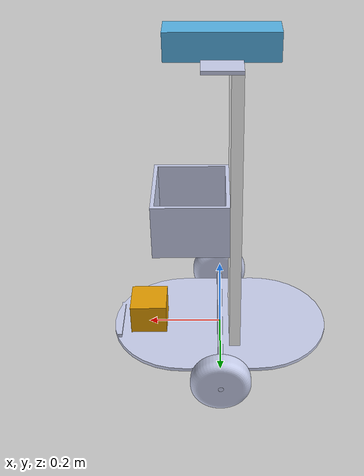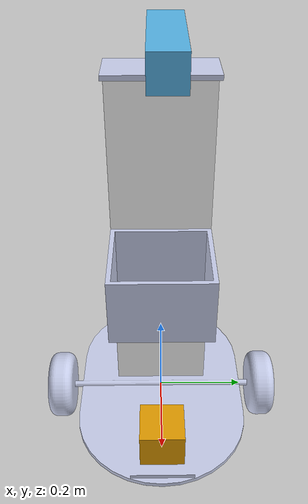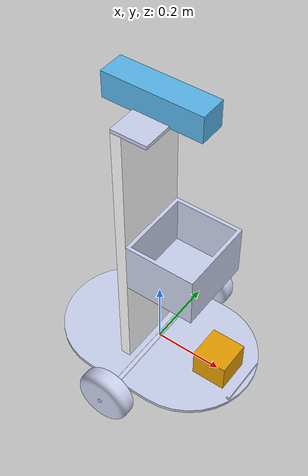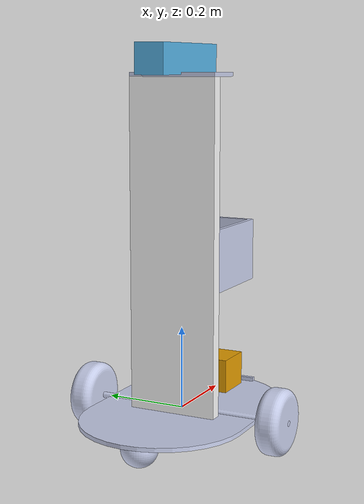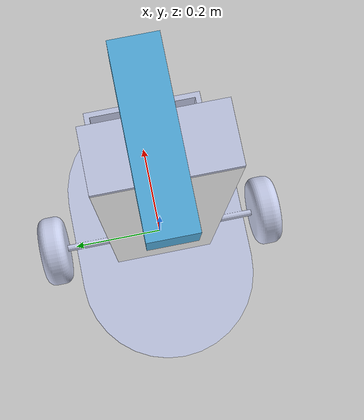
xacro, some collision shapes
<?xml version="1.0" ?>
<robot xmlns:xacro="http://www.ros.org/wiki/xacro"
 	     xmlns:sensor="http://playerstage.sourceforge.net/gazebo/xmlschema/#sensor"
    	 xmlns:controller="http://playerstage.sourceforge.net/gazebo/xmlschema/#controller"
    	 xmlns:interface="http://playerstage.sourceforge.net/gazebo/xmlschema/#interface"
  name="deliver_rb">

  <!-- LASER ATTACHMENT -->
  <xacro:include filename="$(find deliver_rb)/urdf/hokuyo.xacro"/>

  <xacro:hokuyo_sensor parent="base_link">
	</xacro:hokuyo_sensor>

  <!-- Import all Gazebo-customization elements, including Gazebo colors, sensors, controller -->
  <xacro:include filename="$(find deliver_rb)/urdf/plug_in.gazebo" />

  <xacro:property name="length_wheel" value="0.06" />
	<xacro:property name="radius_wheel" value="0.08" />
	<xacro:property name="mass_wheel" value="1.5" />
	<xacro:property name="distance_2wheels" value="0.5" />

	<xacro:property name="radius_base" value="0.6" />
	<xacro:property name="length_base" value="0.02" />
	<xacro:property name="mass_base" value="4" />

    <!-- KINECT ATTACHMENT -->
    <xacro:include filename="$(find deliver_rb)/urdf/kinect.xacro"/>
    <xacro:kinect_sensor parent_frame="hat">
    </xacro:kinect_sensor>

<!-- inertia for 3 popular shape -->
  <xacro:macro name="default_inertia" params="mass">
    <inertia>
      <mass value="${mass}" />
      <inertia
        ixx="1.0" ixy="0.0" ixz="0.0"
        iyy="1.0" iyz="0.0"
        izz="1.0" />
    </inertia>
	</xacro:macro>

	<xacro:macro name="cylinder_inertia" params="m r h">
		<inertia  ixx="${m*(3*r*r+h*h)/12}" ixy = "0" ixz = "0"
	    		iyy="${m*(3*r*r+h*h)/12}" iyz = "0"
	    		izz="${m*r*r/2}"
  		/>
	</xacro:macro>

	<xacro:macro name="sphere_inertia" params="m r">
		<inertia
			ixx="${2*m*r*r/5}" ixy = "0" ixz = "0"
		    	iyy="${2*m*r*r/5}" iyz = "0"
		    	izz="${2*m*r*r/5}"
		/>
	</xacro:macro>

<!-- inertia for 3 popular shape -->

  <link
    name="base_link">
    <inertial>
      <origin
        xyz="0.0018748 -2.8458E-17 -0.0047313"
        rpy="0 0 0" />
      <mass
        value="4" />
      <inertia
        ixx="0.025394"
        ixy="-4.7715E-19"
        ixz="-3.8944E-05"
        iyy="0.050269"
        iyz="-5.5879E-20"
        izz="0.075619" />
    </inertial>
    <visual>
      <origin
        xyz="0 0 0"
        rpy="0 0 0" />
      <geometry>
        <mesh
          filename="package://deliver_rb/meshes/base_link.STL" />
      </geometry>
      <material
        name="">
        <color
          rgba="0.79216 0.81961 0.93333 1" />
      </material>
    </visual>
    <collision>
      <origin
        xyz="0 0 0"
        rpy="0 0 0" />
      <geometry>
        <mesh
          filename="package://deliver_rb/meshes/base_link.STL" />
      </geometry>
    </collision>
  </link>
  <link
    name="right_wheel">
    <inertial>
      <origin
        xyz="3.8799E-19 0 2.1874E-18"
        rpy="0 0 0" />
      <mass
        value="1.1143" />
      <inertia
        ixx="0.0020008"
        ixy="-2.5123E-21"
        ixz="3.405E-20"
        iyy="0.0033919"
        iyz="3.0361E-21"
        izz="0.0020008" />
    </inertial>
    <visual>
      <origin
        xyz="0 0 0"
        rpy="0 0 0" />
      <geometry>
        <mesh
          filename="package://deliver_rb/meshes/right_wheel.STL" />
      </geometry>
      <material
        name="">
        <color
          rgba="0.79216 0.81961 0.93333 1" />
      </material>
    </visual>
    <collision>
      <origin
        xyz="0 0 0"
        rpy="0 0 0" />
      <geometry>
        <mesh
          filename="package://deliver_rb/meshes/right_wheel.STL" />
      </geometry>
    </collision>
  </link>
  <joint
    name="base_right_join"
    type="continuous">
    <origin
      xyz="0 -0.25 0"
      rpy="0 0 0" />
    <parent
      link="base_link" />
    <child
      link="right_wheel" />
    <axis
      xyz="0 1 0" />
  </joint>
  <link
    name="left_wheel">
    <inertial>
      <origin
        xyz="-1.31975619602331E-18 0 -8.88625198590593E-19"
        rpy="0 0 0" />
      <mass
        value="1.11429115383499" />
      <inertia
        ixx="0.00200083706988604"
        ixy="-1.65144393546253E-20"
        ixz="9.01511062397042E-20"
        iyy="0.00339186705795332"
        iyz="-7.15320021113774E-21"
        izz="0.00200083706988604" />
    </inertial>
    <visual>
      <origin
        xyz="0 0 0"
        rpy="0 0 0" />
      <geometry>
        <mesh
          filename="package://deliver_rb/meshes/left_wheel.STL" />
      </geometry>
      <material
        name="">
        <color
          rgba="0.792156862745098 0.819607843137255 0.933333333333333 1" />
      </material>
    </visual>
    <collision>
      <origin
        xyz="0 0 0"
        rpy="0 0 0" />
      <geometry>
        <mesh
          filename="package://deliver_rb/meshes/left_wheel.STL" />
      </geometry>
    </collision>
  </link>
  <joint
    name="base_left_wheel"
    type="continuous">
    <origin
      xyz="0 0.25 0"
      rpy="0 0 0" />
    <parent
      link="base_link" />
    <child
      link="left_wheel" />
    <axis
      xyz="0 1 0" />
  </joint>
  <link
    name="pole">
    <inertial>
      <origin
        xyz="0 0 0"
        rpy="0 0 0" />
      <mass
        value="0" />
      <inertia
        ixx="0"
        ixy="0"
        ixz="0"
        iyy="0"
        iyz="0"
        izz="0" />
    </inertial>
    <visual>
      <origin
        xyz="0 0 0"
        rpy="0 0 0" />
      <geometry>
        <mesh
          filename="package://deliver_rb/meshes/pole.STL" />
      </geometry>
      <material
        name="">
        <color
          rgba="1 1 1 1" />
      </material>
    </visual>
    <collision>
      <origin
        xyz="0 0 0"
        rpy="0 0 0" />
      <geometry>
        <mesh
          filename="package://deliver_rb/meshes/pole.STL" />
      </geometry>
    </collision>
  </link>
  <joint
    name="base_pole_join"
    type="fixed">
    <origin
      xyz="-0.0549999999999999 0 0"
      rpy="0 0 0" />
    <parent
      link="base_link" />
    <child
      link="pole" />
    <axis
      xyz="0 0 0" />
  </joint>
  <link
    name="free_forward">
    <inertial>
      <origin
        xyz="2.77555756156289E-17 -1.78473511245526E-18 -0.0265597216130682"
        rpy="0 0 0" />
      <mass
        value="0.367480429154608" />
      <inertia
        ixx="0.000308959164383823"
        ixy="-5.83955431755321E-21"
        ixz="1.16318882227363E-20"
        iyy="0.000308959164383823"
        iyz="9.97736898770812E-21"
        izz="0.000377486723963042" />
    </inertial>
    <visual>
      <origin
        xyz="0 0 0"
        rpy="0 0 0" />
      <geometry>
        <mesh
          filename="package://deliver_rb/meshes/free_forward.STL" />
      </geometry>
      <material
        name="">
        <color
          rgba="0.792156862745098 0.819607843137255 0.933333333333333 1" />
      </material>
    </visual>
    <collision>
      <origin
        xyz="0 0 0"
        rpy="0 0 0" />
      <geometry>
        <mesh
          filename="package://deliver_rb/meshes/free_forward.STL" />
      </geometry>
    </collision>
  </link>
  <joint
    name="pole_ff_join"
    type="fixed">
    <origin
      xyz="0.24 0 -0.01"
      rpy="0 0 0" />
    <parent
      link="pole" />
    <child
      link="free_forward" />
    <axis
      xyz="0 0 0" />
  </joint>
  <link
    name="free_backward">
    <inertial>
      <origin
        xyz="-2.77555756156289E-17 -6.56426560994378E-19 -0.0265597216130682"
        rpy="0 0 0" />
      <mass
        value="0.367480429154608" />
      <inertia
        ixx="0.000308959164383823"
        ixy="1.83961226452716E-20"
        ixz="-1.76542212777665E-20"
        iyy="0.000308959164383823"
        iyz="1.86705601142899E-21"
        izz="0.000377486723963042" />
    </inertial>
    <visual>
      <origin
        xyz="0 0 0"
        rpy="0 0 0" />
      <geometry>
        <mesh
          filename="package://deliver_rb/meshes/free_backward.STL" />
      </geometry>
      <material
        name="">
        <color
          rgba="0.792156862745098 0.819607843137255 0.933333333333333 1" />
      </material>
    </visual>
    <collision>
      <origin
        xyz="0 0 0"
        rpy="0 0 0" />
      <geometry>
        <mesh
          filename="package://deliver_rb/meshes/free_backward.STL" />
      </geometry>
    </collision>
  </link>
  <joint
    name="pole_fb_join"
    type="fixed">
    <origin
      xyz="-0.16 0 -0.01"
      rpy="0 0 0" />
    <parent
      link="pole" />
    <child
      link="free_backward" />
    <axis
      xyz="0 0 0" />
  </joint>
  <link
    name="basket">
    <inertial>
      <origin
        xyz="0.1 -0.11 0.0588461538461538"
        rpy="0 0 0" />
      <mass
        value="1.56" />
      <inertia
        ixx="0.0134299230769231"
        ixy="3.97024177053883E-19"
        ixz="-1.15880430376558E-18"
        iyy="0.0120019230769231"
        iyz="2.60339405582985E-18"
        izz="0.018212" />
    </inertial>
    <visual>
      <origin
        xyz="0 0 0"
        rpy="0 0 0" />
      <geometry>
        <mesh
          filename="package://deliver_rb/meshes/basket.STL" />
      </geometry>
      <material
        name="">
        <color
          rgba="0.792156862745098 0.819607843137255 0.933333333333333 1" />
      </material>
    </visual>
    <collision>
      <origin
        xyz="0 0 0"
        rpy="0 0 0" />
      <geometry>
        <mesh
          filename="package://deliver_rb/meshes/basket.STL" />
      </geometry>
    </collision>
  </link>
  <joint
    name="pole_basket_join"
    type="fixed">
    <origin
      xyz="0.03 0.11 0.3"
      rpy="0 0 0" />
    <parent
      link="pole" />
    <child
      link="basket" />
    <axis
      xyz="0 0 0" />
  </joint>
  <link
    name="hat">
    <inertial>
      <origin
        xyz="0.11 0.05 -0.00500000000000012"
        rpy="0 0 0" />
      <mass
        value="0.22" />
      <inertia
        ixx="0.000185166666666667"
        ixy="2.79179908320294E-37"
        ixz="6.57523442521934E-22"
        iyy="0.000889166666666668"
        iyz="-2.9939791242282E-21"
        izz="0.00107066666666667" />
    </inertial>
    <visual>
      <origin
        xyz="0 0 0"
        rpy="0 0 0" />
      <geometry>
        <mesh
          filename="package://deliver_rb/meshes/hat.STL" />
      </geometry>
      <material
        name="">
        <color
          rgba="0.792156862745098 0.819607843137255 0.933333333333333 1" />
      </material>
    </visual>
    <collision>
      <origin
        xyz="0 0 0"
        rpy="0 0 0" />
      <geometry>
        <mesh
          filename="package://deliver_rb/meshes/hat.STL" />
      </geometry>
    </collision>
  </link>
  <joint
    name="basket_hat_join"
    type="fixed">
    <origin
      xyz="-0.0299999999999999 0 0.51"
      rpy="0 0 -1.5707963267949" />
    <parent
      link="basket" />
    <child
      link="hat" />
    <axis
      xyz="0 0 0" />
  </joint>

</robot>

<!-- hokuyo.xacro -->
<robot name="hokuyo_sensor" xmlns:xacro="http://www.ros.org/wiki/xacro">

 <xacro:macro name="hokuyo_sensor" params="parent">
     <link name="laser">
   <collision>
     <origin xyz="0 0 0" rpy="0 0 0"/>
     <geometry>
        <box size="0.1 0.1 0.1"/>
     </geometry>
   </collision>
   <visual>
     <origin xyz="0 0 0" rpy="0 0 0"/>
     <geometry>
       <mesh filename="package://deliver_rb/meshes/hokuyo.dae"/>
     </geometry>
   </visual>
   <inertial>
     <mass value="1e-5" />
     <origin xyz="0 0 0" rpy="0 0 0"/>
     <inertia ixx="1e-6" ixy="0" ixz="0" iyy="1e-6" iyz="0" izz="1e-6" />
   </inertial>
 </link>
 <joint name="laser_joint" type="fixed">
   <axis xyz="0 0 0" />
   <origin xyz="0.2 0.0 0.035" rpy="0 0 0"/>
   <parent link="${parent}"/>
   <child link="laser"/>
 </joint>
 </xacro:macro>

  </robot>

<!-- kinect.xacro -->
<robot name="kinect" xmlns:xi="http://www.w3.org/2001/XInclude"
    xmlns:gazebo="http://playerstage.sourceforge.net/gazebo/xmlschema/#gz"
    xmlns:model="http://playerstage.sourceforge.net/gazebo/xmlschema/#model"
    xmlns:sensor="http://playerstage.sourceforge.net/gazebo/xmlschema/#sensor"
    xmlns:body="http://playerstage.sourceforge.net/gazebo/xmlschema/#body"
    xmlns:geom="http://playerstage.sourceforge.net/gazebo/xmlschema/#geom"
    xmlns:joint="http://playerstage.sourceforge.net/gazebo/xmlschema/#joint"
    xmlns:controller="http://playerstage.sourceforge.net/gazebo/xmlschema/#controller"
    xmlns:interface="http://playerstage.sourceforge.net/gazebo/xmlschema/#interface"
    xmlns:rendering="http://playerstage.sourceforge.net/gazebo/xmlschema/#rendering"
    xmlns:renderable="http://playerstage.sourceforge.net/gazebo/xmlschema/#renderable"
    xmlns:physics="http://playerstage.sourceforge.net/gazebo/xmlschema/#physics"
    xmlns:xacro="http://ros.org/wiki/xacro">

  <!-- math constants -->
  <xacro:property name="M_PI" value="3.1415926535897931" />
<xacro:macro name="kinect_sensor" params="parent_frame" >

  <joint name="base_camera_joint" type="fixed">
    <origin xyz="0.1 0.05 0.03" rpy="0 0 1.57" />
    <parent link="${parent_frame}" />
    <child link="camera_link" />
  </joint>

  <link name="camera_link">
    <inertial>
      <mass value="0.01" />
      <origin xyz="0 0 0" />
      <inertia ixx="0.001" ixy="0.0" ixz="0.0"
        iyy="0.001" iyz="0.0"
        izz="0.001" />
    </inertial>

    <visual>
      <origin xyz=" 0 0 0 " rpy="0 0 1.57" />
      <geometry>
        <mesh filename="package://deliver_rb/meshes/kinect.dae"/>
      </geometry>
    </visual>

    <collision>
      <origin xyz="0.0 0.0 0.0" rpy="0 0 1.57" />
      <geometry>
        <box size="0.0730 .2760 0.0720"/>
      </geometry>
    </collision>

  </link>

  <joint name="camera_depth_joint" type="fixed">
    <origin xyz="0 0.011 0" rpy="0 0 0" />
    <parent link="camera_link" />
    <child link="camera_depth_frame" />
  </joint>

  <link name="camera_depth_frame">
    <inertial>
      <mass value="0.01" />
      <origin xyz="0 0 0" />
      <inertia ixx="0.001" ixy="0.0" ixz="0.0"
        iyy="0.001" iyz="0.0"
        izz="0.001" />
    </inertial>
  </link>

  <joint name="camera_depth_optical_joint" type="fixed">
    <origin xyz="0 0 0" rpy="${-M_PI/2} 0 ${-M_PI/2}" />
    <parent link="camera_depth_frame" />
    <child link="camera_depth_optical_frame" />
  </joint>

  <link name="camera_depth_optical_frame">
    <inertial>
      <mass value="0.001" />
      <origin xyz="0 0 0" />
      <inertia ixx="0.0001" ixy="0.0" ixz="0.0"
        iyy="0.0001" iyz="0.0"
        izz="0.0001" />
    </inertial>
  </link>

  <joint name="camera_rgb_joint" type="fixed">
    <origin xyz="0 -0.012 0" rpy="0 0 0" />
    <parent link="camera_link" />
    <child link="camera_rgb_frame" />
  </joint>

  <link name="camera_rgb_frame">
    <inertial>
      <mass value="0.001" />
      <origin xyz="0 0 0" />
      <inertia ixx="0.0001" ixy="0.0" ixz="0.0"
        iyy="0.0001" iyz="0.0"
        izz="0.0001" />
    </inertial>
  </link>

  <joint name="camera_rgb_optical_joint" type="fixed">
    <origin xyz="0 0 0" rpy="${-M_PI/2} 0 ${-M_PI/2}" />
    <parent link="camera_rgb_frame" />
    <child link="camera_rgb_optical_frame" />
  </joint>

  <link name="camera_rgb_optical_frame">
    <inertial>
      <mass value="0.001" />
      <origin xyz="0 0 0" />
      <inertia ixx="0.0001" ixy="0.0" ixz="0.0"
        iyy="0.0001" iyz="0.0"
        izz="0.0001" />
    </inertial>
  </link>

</xacro:macro>

</robot>
